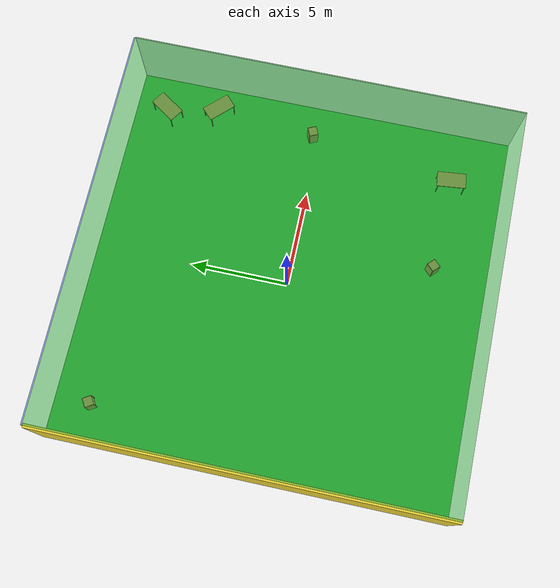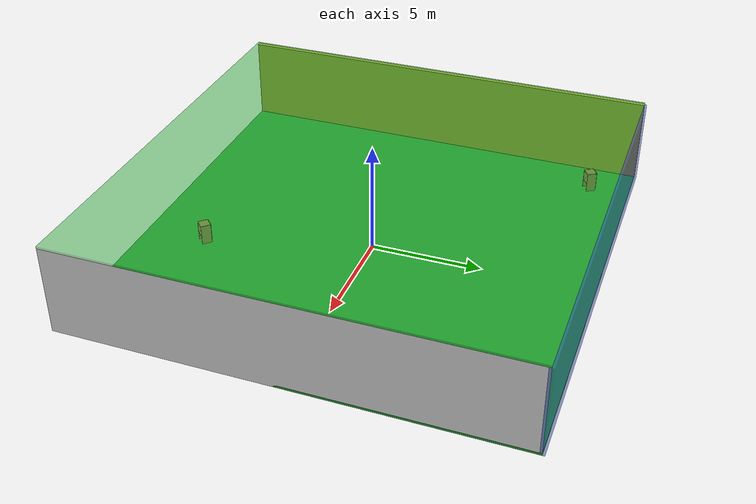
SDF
<sdf version="1.4">
 <world name="default">
  <physics type="ode">
   <max_step_size>0.001</max_step_size>
   <real_time_factor>1</real_time_factor>
   <real_time_update_rate>1000</real_time_update_rate>
   <gravity>0 0 -9.8</gravity>
  </physics>
  <scene><ambient>0.4 0.4 0.4 1</ambient><background>0.7 0.7 0.7 1</background><shadows>1</shadows></scene>
  <model name="Surrounding">
   <static>1</static>
   <link name="Ceiling">
    <collision name="Ceiling_Collision"><geometry><box><size>20 20 0.1</size></box></geometry></collision>
    <visual name="Ceiling_Visual">
     <geometry><box><size>20 20 0.1</size></box></geometry>
     <material>
      <script><uri>file://media/materials/scripts/gazebo.material</uri><name>Gazebo/GreenTransparent</name></script>
     </material>
    </visual>
    <pose>0 0 4.05 0 0 0</pose>
   </link>
   <link name="Wall_South">
    <collision name="Wall_South_Collision">
     <geometry><box><size>20 0 4</size></box></geometry>
     <pose>0 0 2 0 -0 0</pose>
    </collision>
    <visual name="Wall_South_Visual">
     <pose>0 0 2 0 -0 0</pose>
     <geometry><box><size>20 0 4</size></box></geometry>
     <material>
      <script>
       <uri>file://media/materials/scripts/gazebo.material</uri>
       <name>Gazebo/OrangeTransparent</name>
      </script>
     </material>
    </visual>
    <velocity_decay><linear>0</linear><angular>0</angular></velocity_decay>
    <pose>0 -10 0 0 -0 0</pose>
   </link>
   <link name="Wall_East">
    <collision name="Wall_21_Collision">
     <geometry><box><size>20 0 4</size></box></geometry>
     <pose>0 0 2 0 -0 0</pose>
    </collision>
    <visual name="Wall_21_Visual">
     <pose>0 0 2 0 -0 0</pose>
     <geometry><box><size>20 0 4</size></box></geometry>
     <material>
      <script><uri>file://media/materials/scripts/gazebo.material</uri><name>Gazebo/White</name></script>
     </material>
    </visual>
    <velocity_decay><linear>0</linear><angular>0</angular></velocity_decay>
    <pose>10 0 0 0 -0 1.5708</pose>
   </link>
   <link name="Wall_North">
    <collision name="Wall_22_Collision">
     <geometry><box><size>20 0.2 4</size></box></geometry>
     <pose>0 0 2 0 -0 0</pose>
    </collision>
    <visual name="Wall_22_Visual">
     <pose>0 0 2 0 -0 0</pose>
     <geometry><box><size>20 0.2 4</size></box></geometry>
     <material>
      <script><uri>file://media/materials/scripts/gazebo.material</uri><name>Gazebo/BlueTransparent</name></script>
     </material>
    </visual>
    <velocity_decay><linear>0</linear><angular>0</angular></velocity_decay>
    <pose>0 10 0 0 -0 0</pose>
   </link>
   <link name="Wall_West">
    <collision name="Wall_23_Collision">
     <geometry><box><size>20 0.2 4</size></box></geometry>
     <pose>0 0 2 0 -0 0</pose>
    </collision>
    <visual name="Wall_23_Visual">
     <pose>0 0 2 0 -0 0</pose>
     <geometry><box><size>20 0.2 4</size></box></geometry>
     <material>
      <script><uri>file://media/materials/scripts/gazebo.material</uri><name>Gazebo/ZincYellow</name></script>
     </material>
    </visual>
    <velocity_decay><linear>0</linear><angular>0</angular></velocity_decay>
    <pose>-10 0 0 0 0 -1.5708</pose>
   </link>
   <link name="Ground_link">
    <collision name="collision">
     <pose>0 0 .05 0 -0 0</pose>
     <geometry><box><size>20 20 0.1</size></box></geometry>
    </collision>
    <visual name="visual">
     <pose>0 0 .05 0 -0 0</pose>
     <geometry><box><size>20 20 0.1</size></box></geometry>
     <material>
      <script><uri>file://media/materials/scripts/gazebo.material</uri><name>Gazebo/GreenGlow</name></script>
     </material>
    </visual>
   </link>
   <static>1</static>
  </model>
  <spherical_coordinates>
   <surface_model>EARTH_WGS84</surface_model>
   <latitude_deg>0</latitude_deg>
   <longitude_deg>0</longitude_deg>
   <elevation>0</elevation>
   <heading_deg>0</heading_deg>
  </spherical_coordinates>
  <light name="lightball_0" type="diffuse">
   <diffuse>0.8 0.8 0.8 1</diffuse>
   <specular>0.2 0.2 0.2 1</specular>
   <attenuation>
    <range>100</range>
    <constant>0.7</constant>
    <linear>0.01</linear>
    <quadratic>0.001</quadratic>
   </attenuation>
   <direction>-0.5 0.1 -0.9</direction>
   <pose>-6.39902011053 -8.59971075033 2.58267087865 0 0 0</pose>
  </light>
  <light name="lightball_1" type="diffuse">
   <diffuse>0.8 0.8 0.8 1</diffuse>
   <specular>0.2 0.2 0.2 1</specular>
   <attenuation>
    <range>100</range>
    <constant>0.7</constant>
    <linear>0.01</linear>
    <quadratic>0.001</quadratic>
   </attenuation>
   <direction>-0.5 0.1 -0.9</direction>
   <pose>-1.46310170676 6.9138893896 1.11907132911 0 0 0</pose>
  </light>
  <light name="lightball_2" type="diffuse">
   <diffuse>0.8 0.8 0.8 1</diffuse>
   <specular>0.2 0.2 0.2 1</specular>
   <attenuation>
    <range>100</range>
    <constant>0.7</constant>
    <linear>0.01</linear>
    <quadratic>0.001</quadratic>
   </attenuation>
   <direction>-0.5 0.1 -0.9</direction>
   <pose>7.14398658405 -8.04235044506 0.663584476485 0 0 0</pose>
  </light>
  <light name="lightball_3" type="diffuse">
   <diffuse>0.8 0.8 0.8 1</diffuse>
   <specular>0.2 0.2 0.2 1</specular>
   <attenuation>
    <range>100</range>
    <constant>0.7</constant>
    <linear>0.01</linear>
    <quadratic>0.001</quadratic>
   </attenuation>
   <direction>-0.5 0.1 -0.9</direction>
   <pose>-6.98282046182 6.92509995241 1.80082144927 0 0 0</pose>
  </light>
  <light name="lightball_4" type="diffuse">
   <diffuse>0.8 0.8 0.8 1</diffuse>
   <specular>0.2 0.2 0.2 1</specular>
   <attenuation>
    <range>100</range>
    <constant>0.7</constant>
    <linear>0.01</linear>
    <quadratic>0.001</quadratic>
   </attenuation>
   <direction>-0.5 0.1 -0.9</direction>
   <pose>-0.858664980718 -1.5593113494 1.21570925205 0 0 0</pose>
  </light>
  <light name="lightball_5" type="diffuse">
   <diffuse>0.8 0.8 0.8 1</diffuse>
   <specular>0.2 0.2 0.2 1</specular>
   <attenuation>
    <range>100</range>
    <constant>0.7</constant>
    <linear>0.01</linear>
    <quadratic>0.001</quadratic>
   </attenuation>
   <direction>-0.5 0.1 -0.9</direction>
   <pose>6.52270584617 8.79226536905 3.84671824679 0 0 0</pose>
  </light>
  <light name="lightball_6" type="diffuse">
   <diffuse>0.8 0.8 0.8 1</diffuse>
   <specular>0.2 0.2 0.2 1</specular>
   <attenuation>
    <range>100</range>
    <constant>0.7</constant>
    <linear>0.01</linear>
    <quadratic>0.001</quadratic>
   </attenuation>
   <direction>-0.5 0.1 -0.9</direction>
   <pose>5.23737907882 -3.97029963307 1.99034514452 0 0 0</pose>
  </light>
  <light name="lightball_7" type="diffuse">
   <diffuse>0.8 0.8 0.8 1</diffuse>
   <specular>0.2 0.2 0.2 1</specular>
   <attenuation>
    <range>100</range>
    <constant>0.7</constant>
    <linear>0.01</linear>
    <quadratic>0.001</quadratic>
   </attenuation>
   <direction>-0.5 0.1 -0.9</direction>
   <pose>1.63339596574 0.202702040698 0.618203999651 0 0 0</pose>
  </light>
  <light name="lightball_8" type="diffuse">
   <diffuse>0.8 0.8 0.8 1</diffuse>
   <specular>0.2 0.2 0.2 1</specular>
   <attenuation>
    <range>100</range>
    <constant>0.7</constant>
    <linear>0.01</linear>
    <quadratic>0.001</quadratic>
   </attenuation>
   <direction>-0.5 0.1 -0.9</direction>
   <pose>-2.26761074723 8.1272558959 0.803082106329 0 0 0</pose>
  </light>
  <light name="lightball_9" type="diffuse">
   <diffuse>0.8 0.8 0.8 1</diffuse>
   <specular>0.2 0.2 0.2 1</specular>
   <attenuation>
    <range>100</range>
    <constant>0.7</constant>
    <linear>0.01</linear>
    <quadratic>0.001</quadratic>
   </attenuation>
   <direction>-0.5 0.1 -0.9</direction>
   <pose>5.33387974167 -1.95593002554 1.5335357637 0 0 0</pose>
  </light>
  <light name="lightball_10" type="diffuse">
   <diffuse>0.8 0.8 0.8 1</diffuse>
   <specular>0.2 0.2 0.2 1</specular>
   <attenuation>
    <range>100</range>
    <constant>0.7</constant>
    <linear>0.01</linear>
    <quadratic>0.001</quadratic>
   </attenuation>
   <direction>-0.5 0.1 -0.9</direction>
   <pose>-0.446574982361 1.77454887733 3.78742319188 0 0 0</pose>
  </light>
  <include><uri>model://cabinet</uri><pose>-8.06177552543 8.12127179434 0 0 0 2.12158871243</pose></include>
  <include><uri>model://cabinet</uri><pose>2.26663890685 -7.12056267401 0 0 0 2.34915694092</pose></include>
  <include><uri>model://table</uri><pose>7.03428200196 -7.24783106566 0 0 0 1.67649089958</pose></include>
  <include><uri>model://cabinet</uri><pose>8.21247486123 0.347531577665 0 0 0 1.99780584347</pose></include>
  <include><uri>model://table</uri><pose>8.52390519935 5.52449514584 0 0 0 2.34163219662</pose></include>
  <include><uri>model://table</uri><pose>8.00146958934 8.22279004158 0 0 0 0.978311500708</pose></include>
 </world>
</sdf>

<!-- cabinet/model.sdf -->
<sdf version="1.5">
  <model name="cabinet">
    <static>true</static>
    <link name="cabinet_bottom_plate">
      <inertial>
        <pose>0 0 -1 0 0 0</pose>
        <inertia>
          <ixx>2.050000</ixx>
          <ixy>0</ixy>
          <ixz>0</ixz>
          <iyy>2.050000</iyy>
          <iyz>0</iyz>
          <izz>2.050000</izz>
        </inertia>
        <mass>25.000000</mass>
      </inertial>
      <collision name="cabinet_bottom_plate_geom">
        <pose>0 0 0.010000 0 0 0</pose>
        <geometry>
          <box>
            <size>0.450000 0.450000 0.020000</size>
          </box>
        </geometry>
      </collision>
      <visual name="cabinet_bottom_plate_geom_visual">
        <pose>0 0 0.010000 0 0 0</pose>
        <geometry>
          <box>
            <size>0.450000 0.450000 0.020000</size>
          </box>
        </geometry>
        <material>
          <script>
            <uri>model://media/materials/scripts/gazebo.material</uri>
            <name>Gazebo/Wood</name>
          </script>
        </material>
      </visual>
      <collision name="cabinet_bottom_plate_geom_cabinet_back_plate">
        <pose>0.235000 0 0.510000 0 0 0</pose>
        <geometry>
          <box>
            <size>0.020000 0.450000 1.020000</size>
          </box>
        </geometry>
      </collision>
      <visual name="cabinet_bottom_plate_geom_cabinet_back_plate_visual">
        <pose>0.235000 0 0.510000 0 0 0</pose>
        <geometry>
          <box>
            <size>0.020000 0.450000 1.020000</size>
          </box>
        </geometry>
        <material>
          <script>
            <uri>model://media/materials/scripts/gazebo.material</uri>
            <name>Gazebo/Wood</name>
          </script>
        </material>
      </visual>
      <collision name="cabinet_bottom_plate_geom_cabinet_left_plate">
        <pose>0 0.235000 0.510000 0 0 0</pose>
        <geometry>
          <box>
            <size>0.450000 0.020000 1.020000</size>
          </box>
        </geometry>
      </collision>
      <visual name="cabinet_bottom_plate_geom_cabinet_left_plate_visual">
        <pose>0 0.235000 0.510000 0 0 0</pose>
        <geometry>
          <box>
            <size>0.450000 0.020000 1.020000</size>
          </box>
        </geometry>
        <material>
          <script>
            <uri>model://media/materials/scripts/gazebo.material</uri>
            <name>Gazebo/Wood</name>
          </script>
        </material>
      </visual>
      <collision name="cabinet_bottom_plate_geom_cabinet_middle_plate">
        <pose>0 0 0.510000 0 0 0</pose>
        <geometry>
          <box>
            <size>0.450000 0.450000 0.020000</size>
          </box>
        </geometry>
      </collision>
      <visual name="cabinet_bottom_plate_geom_cabinet_middle_plate_visual">
        <pose>0 0 0.510000 0 0 0</pose>
        <geometry>
          <box>
            <size>0.450000 0.450000 0.020000</size>
          </box>
        </geometry>
        <material>
          <script>
            <uri>model://media/materials/scripts/gazebo.material</uri>
            <name>Gazebo/Wood</name>
          </script>
        </material>
      </visual>
      <collision name="cabinet_bottom_plate_geom_cabinet_right_plate">
        <pose>0 -0.235000 0.510000 0 0 0</pose>
        <geometry>
          <box>
            <size>0.450000 0.020000 1.020000</size>
          </box>
        </geometry>
      </collision>
      <visual name="cabinet_bottom_plate_geom_cabinet_right_plate_visual">
        <pose>0 -0.235000 0.510000 0 0 0</pose>
        <geometry>
          <box>
            <size>0.450000 0.020000 1.020000</size>
          </box>
        </geometry>
        <material>
          <script>
            <uri>model://media/materials/scripts/gazebo.material</uri>
            <name>Gazebo/Wood</name>
          </script>
        </material>
      </visual>
      <collision name="cabinet_bottom_plate_geom_cabinet_top_plate">
        <pose>0 0 1.010000 0 0 0</pose>
        <geometry>
          <box>
            <size>0.450000 0.450000 0.020000</size>
          </box>
        </geometry>
      </collision>
      <visual name="cabinet_bottom_plate_geom_cabinet_top_plate_visual">
        <pose>0 0 1.010000 0 0 0</pose>
        <geometry>
          <box>
            <size>0.450000 0.450000 0.020000</size>
          </box>
        </geometry>
        <material>
          <script>
            <uri>model://media/materials/scripts/gazebo.material</uri>
            <name>Gazebo/Wood</name>
          </script>
        </material>
      </visual>
    </link>
  </model>
</sdf>

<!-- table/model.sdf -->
<sdf version="1.5">
  <model name="table">
    <static>true</static>
    <link name="link">
      <collision name="surface">
        <pose>0 0 1.0 0 0 0</pose>
        <geometry>
          <box>
            <size>1.5 0.8 0.03</size>
          </box>
        </geometry>
        <surface>
          <friction>
            <ode>
              <mu>0.6</mu>
              <mu2>0.6</mu2>
            </ode>
          </friction>
        </surface>
      </collision>
      <visual name="visual1">
        <pose>0 0 1.0 0 0 0</pose>
        <geometry>
          <box>
            <size>1.5 0.8 0.03</size>
          </box>
        </geometry>
        <material>
          <script>
            <uri>model://media/materials/scripts/gazebo.material</uri>
            <name>Gazebo/Wood</name>
          </script>
        </material>
      </visual>
      <collision name="front_left_leg">
        <pose>0.68 0.38 0.5 0 0 0</pose>
        <geometry>
          <cylinder>
            <radius>0.02</radius>
            <length>1.0</length>
          </cylinder>
        </geometry>
      </collision>
      <visual name="front_left_leg">
        <pose>0.68 0.38 0.5 0 0 0</pose>
        <geometry>
          <cylinder>
            <radius>0.02</radius>
            <length>1.0</length>
          </cylinder>
        </geometry>
        <material>
          <script>
            <uri>model://media/materials/scripts/gazebo.material</uri>
            <name>Gazebo/Grey</name>
          </script>
        </material>
      </visual>
      <collision name="front_right_leg">
        <pose>0.68 -0.38 0.5 0 0 0</pose>
        <geometry>
          <cylinder>
            <radius>0.02</radius>
            <length>1.0</length>
          </cylinder>
        </geometry>
      </collision>
      <visual name="front_right_leg">
        <pose>0.68 -0.38 0.5 0 0 0</pose>
        <geometry>
          <cylinder>
            <radius>0.02</radius>
            <length>1.0</length>
          </cylinder>
        </geometry>
        <material>
          <script>
            <uri>model://media/materials/scripts/gazebo.material</uri>
            <name>Gazebo/Grey</name>
          </script>
        </material>
      </visual>
      <collision name="back_right_leg">
        <pose>-0.68 -0.38 0.5 0 0 0</pose>
        <geometry>
          <cylinder>
            <radius>0.02</radius>
            <length>1.0</length>
          </cylinder>
        </geometry>
      </collision>
      <visual name="back_right_leg">
        <pose>-0.68 -0.38 0.5 0 0 0</pose>
        <geometry>
          <cylinder>
            <radius>0.02</radius>
            <length>1.0</length>
          </cylinder>
        </geometry>
        <material>
          <script>
            <uri>model://media/materials/scripts/gazebo.material</uri>
            <name>Gazebo/Grey</name>
          </script>
        </material>
      </visual>
      <collision name="back_left_leg">
        <pose>-0.68 0.38 0.5 0 0 0</pose>
        <geometry>
          <cylinder>
            <radius>0.02</radius>
            <length>1.0</length>
          </cylinder>
        </geometry>
      </collision>
      <visual name="back_left_leg">
        <pose>-0.68 0.38 0.5 0 0 0</pose>
        <geometry>
          <cylinder>
            <radius>0.02</radius>
            <length>1.0</length>
          </cylinder>
        </geometry>
        <material>
          <script>
            <uri>model://media/materials/scripts/gazebo.material</uri>
            <name>Gazebo/Grey</name>
          </script>
        </material>
      </visual>
    </link>
  </model>
</sdf>
